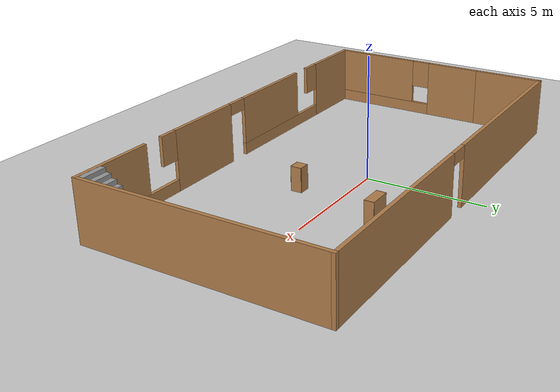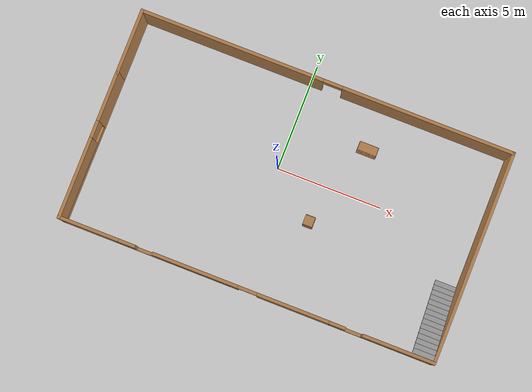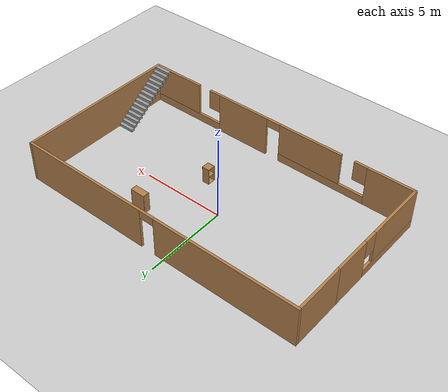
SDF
<sdf version="1.7">
 <world name="default">
  <light name="sun" type="directional">
   <pose>0 0 10 0 -0 0</pose>
   <diffuse>0.8 0.8 0.8 1</diffuse>
   <specular>0.2 0.2 0.2 1</specular>
   <attenuation>
    <range>1000</range>
    <constant>0.9</constant>
    <linear>0.01</linear>
    <quadratic>0.001</quadratic>
   </attenuation>
   <direction>-0.5 0.1 -0.9</direction>
   <spot><inner_angle>0</inner_angle><outer_angle>0</outer_angle><falloff>0</falloff></spot>
  </light>
  <model name="ground_plane">
   <static>1</static>
   <link name="link">
    <collision name="collision">
     <geometry><plane><normal>0 0 1</normal><size>100 100</size></plane></geometry>
     <surface>
      <contact><collide_bitmask>65535</collide_bitmask></contact>
      <friction><ode><mu>100</mu><mu2>50</mu2></ode></friction>
     </surface>
    </collision>
    <visual name="visual">
     <cast_shadows>0</cast_shadows>
     <geometry><plane><normal>0 0 1</normal><size>100 100</size></plane></geometry>
     <material>
      <script><uri>file://media/materials/scripts/gazebo.material</uri><name>Gazebo/Grey</name></script>
     </material>
    </visual>
   </link>
  </model>
  <gravity>0 0 -9.8</gravity>
  <magnetic_field>6e-06 2.3e-05 -4.2e-05</magnetic_field>
  <atmosphere type="adiabatic"/>
  <physics type="ode">
   <max_step_size>0.001</max_step_size>
   <real_time_factor>1</real_time_factor>
   <real_time_update_rate>1000</real_time_update_rate>
  </physics>
  <scene><ambient>0.4 0.4 0.4 1</ambient><background>0.7 0.7 0.7 1</background><shadows>1</shadows></scene>
  <audio><device>default</device></audio>
  <spherical_coordinates>
   <surface_model>EARTH_WGS84</surface_model>
   <latitude_deg>0</latitude_deg>
   <longitude_deg>0</longitude_deg>
   <elevation>0</elevation>
   <heading_deg>0</heading_deg>
  </spherical_coordinates>
  <model name="test">
   <pose>0.740401 -0.77646 0 0 -0 0</pose>
   <link name="Stairs_0">
    <visual name="Stairs_0_Visual_0">
     <pose>8.22968 -1.4617 0.083333 0 -0 0</pose>
     <geometry><box><size>1 0.233333 0.166667</size></box></geometry>
     <material>
      <script><uri>file://media/materials/scripts/gazebo.material</uri><name>Gazebo/Grey</name></script>
      <ambient>1 1 1 1</ambient>
     </material>
     <meta><layer>0</layer></meta>
    </visual>
    <collision name="Stairs_0_Collision_0">
     <geometry><box><size>1 0.233333 0.166667</size></box></geometry>
     <pose>8.22968 -1.4617 0.083333 0 -0 0</pose>
    </collision>
    <visual name="Stairs_0_Visual_1">
     <pose>8.22968 -1.69503 0.25 0 -0 0</pose>
     <geometry><box><size>1 0.233333 0.166667</size></box></geometry>
     <material>
      <script><uri>file://media/materials/scripts/gazebo.material</uri><name>Gazebo/Grey</name></script>
      <ambient>1 1 1 1</ambient>
     </material>
     <meta><layer>0</layer></meta>
    </visual>
    <collision name="Stairs_0_Collision_1">
     <geometry><box><size>1 0.233333 0.166667</size></box></geometry>
     <pose>8.22968 -1.69503 0.25 0 -0 0</pose>
    </collision>
    <visual name="Stairs_0_Visual_2">
     <pose>8.22968 -1.92836 0.416667 0 -0 0</pose>
     <geometry><box><size>1 0.233333 0.166667</size></box></geometry>
     <material>
      <script><uri>file://media/materials/scripts/gazebo.material</uri><name>Gazebo/Grey</name></script>
      <ambient>1 1 1 1</ambient>
     </material>
     <meta><layer>0</layer></meta>
    </visual>
    <collision name="Stairs_0_Collision_2">
     <geometry><box><size>1 0.233333 0.166667</size></box></geometry>
     <pose>8.22968 -1.92836 0.416667 0 -0 0</pose>
    </collision>
    <visual name="Stairs_0_Visual_3">
     <pose>8.22968 -2.1617 0.583333 0 -0 0</pose>
     <geometry><box><size>1 0.233333 0.166667</size></box></geometry>
     <material>
      <script><uri>file://media/materials/scripts/gazebo.material</uri><name>Gazebo/Grey</name></script>
      <ambient>1 1 1 1</ambient>
     </material>
     <meta><layer>0</layer></meta>
    </visual>
    <collision name="Stairs_0_Collision_3">
     <geometry><box><size>1 0.233333 0.166667</size></box></geometry>
     <pose>8.22968 -2.1617 0.583333 0 -0 0</pose>
    </collision>
    <visual name="Stairs_0_Visual_4">
     <pose>8.22968 -2.39503 0.75 0 -0 0</pose>
     <geometry><box><size>1 0.233333 0.166667</size></box></geometry>
     <material>
      <script><uri>file://media/materials/scripts/gazebo.material</uri><name>Gazebo/Grey</name></script>
      <ambient>1 1 1 1</ambient>
     </material>
     <meta><layer>0</layer></meta>
    </visual>
    <collision name="Stairs_0_Collision_4">
     <geometry><box><size>1 0.233333 0.166667</size></box></geometry>
     <pose>8.22968 -2.39503 0.75 0 -0 0</pose>
    </collision>
    <visual name="Stairs_0_Visual_5">
     <pose>8.22968 -2.62836 0.916667 0 -0 0</pose>
     <geometry><box><size>1 0.233333 0.166667</size></box></geometry>
     <material>
      <script><uri>file://media/materials/scripts/gazebo.material</uri><name>Gazebo/Grey</name></script>
      <ambient>1 1 1 1</ambient>
     </material>
     <meta><layer>0</layer></meta>
    </visual>
    <collision name="Stairs_0_Collision_5">
     <geometry><box><size>1 0.233333 0.166667</size></box></geometry>
     <pose>8.22968 -2.62836 0.916667 0 -0 0</pose>
    </collision>
    <visual name="Stairs_0_Visual_6">
     <pose>8.22968 -2.8617 1.08333 0 -0 0</pose>
     <geometry><box><size>1 0.233333 0.166667</size></box></geometry>
     <material>
      <script><uri>file://media/materials/scripts/gazebo.material</uri><name>Gazebo/Grey</name></script>
      <ambient>1 1 1 1</ambient>
     </material>
     <meta><layer>0</layer></meta>
    </visual>
    <collision name="Stairs_0_Collision_6">
     <geometry><box><size>1 0.233333 0.166667</size></box></geometry>
     <pose>8.22968 -2.8617 1.08333 0 -0 0</pose>
    </collision>
    <visual name="Stairs_0_Visual_7">
     <pose>8.22968 -3.09503 1.25 0 -0 0</pose>
     <geometry><box><size>1 0.233333 0.166667</size></box></geometry>
     <material>
      <script><uri>file://media/materials/scripts/gazebo.material</uri><name>Gazebo/Grey</name></script>
      <ambient>1 1 1 1</ambient>
     </material>
     <meta><layer>0</layer></meta>
    </visual>
    <collision name="Stairs_0_Collision_7">
     <geometry><box><size>1 0.233333 0.166667</size></box></geometry>
     <pose>8.22968 -3.09503 1.25 0 -0 0</pose>
    </collision>
    <visual name="Stairs_0_Visual_8">
     <pose>8.22968 -3.32836 1.41667 0 -0 0</pose>
     <geometry><box><size>1 0.233333 0.166667</size></box></geometry>
     <material>
      <script><uri>file://media/materials/scripts/gazebo.material</uri><name>Gazebo/Grey</name></script>
      <ambient>1 1 1 1</ambient>
     </material>
     <meta><layer>0</layer></meta>
    </visual>
    <collision name="Stairs_0_Collision_8">
     <geometry><box><size>1 0.233333 0.166667</size></box></geometry>
     <pose>8.22968 -3.32836 1.41667 0 -0 0</pose>
    </collision>
    <visual name="Stairs_0_Visual_9">
     <pose>8.22968 -3.5617 1.58333 0 -0 0</pose>
     <geometry><box><size>1 0.233333 0.166667</size></box></geometry>
     <material>
      <script><uri>file://media/materials/scripts/gazebo.material</uri><name>Gazebo/Grey</name></script>
      <ambient>1 1 1 1</ambient>
     </material>
     <meta><layer>0</layer></meta>
    </visual>
    <collision name="Stairs_0_Collision_9">
     <geometry><box><size>1 0.233333 0.166667</size></box></geometry>
     <pose>8.22968 -3.5617 1.58333 0 -0 0</pose>
    </collision>
    <visual name="Stairs_0_Visual_10">
     <pose>8.22968 -3.79503 1.75 0 -0 0</pose>
     <geometry><box><size>1 0.233333 0.166667</size></box></geometry>
     <material>
      <script><uri>file://media/materials/scripts/gazebo.material</uri><name>Gazebo/Grey</name></script>
      <ambient>1 1 1 1</ambient>
     </material>
     <meta><layer>0</layer></meta>
    </visual>
    <collision name="Stairs_0_Collision_10">
     <geometry><box><size>1 0.233333 0.166667</size></box></geometry>
     <pose>8.22968 -3.79503 1.75 0 -0 0</pose>
    </collision>
    <visual name="Stairs_0_Visual_11">
     <pose>8.22968 -4.02836 1.91667 0 -0 0</pose>
     <geometry><box><size>1 0.233333 0.166667</size></box></geometry>
     <material>
      <script><uri>file://media/materials/scripts/gazebo.material</uri><name>Gazebo/Grey</name></script>
      <ambient>1 1 1 1</ambient>
     </material>
     <meta><layer>0</layer></meta>
    </visual>
    <collision name="Stairs_0_Collision_11">
     <geometry><box><size>1 0.233333 0.166667</size></box></geometry>
     <pose>8.22968 -4.02836 1.91667 0 -0 0</pose>
    </collision>
    <visual name="Stairs_0_Visual_12">
     <pose>8.22968 -4.2617 2.08333 0 -0 0</pose>
     <geometry><box><size>1 0.233333 0.166667</size></box></geometry>
     <material>
      <script><uri>file://media/materials/scripts/gazebo.material</uri><name>Gazebo/Grey</name></script>
      <ambient>1 1 1 1</ambient>
     </material>
     <meta><layer>0</layer></meta>
    </visual>
    <collision name="Stairs_0_Collision_12">
     <geometry><box><size>1 0.233333 0.166667</size></box></geometry>
     <pose>8.22968 -4.2617 2.08333 0 -0 0</pose>
    </collision>
    <visual name="Stairs_0_Visual_13">
     <pose>8.22968 -4.49503 2.25 0 -0 0</pose>
     <geometry><box><size>1 0.233333 0.166667</size></box></geometry>
     <material>
      <script><uri>file://media/materials/scripts/gazebo.material</uri><name>Gazebo/Grey</name></script>
      <ambient>1 1 1 1</ambient>
     </material>
     <meta><layer>0</layer></meta>
    </visual>
    <collision name="Stairs_0_Collision_13">
     <geometry><box><size>1 0.233333 0.166667</size></box></geometry>
     <pose>8.22968 -4.49503 2.25 0 -0 0</pose>
    </collision>
    <visual name="Stairs_0_Visual_14">
     <pose>8.22968 -4.72836 2.41667 0 -0 0</pose>
     <geometry><box><size>1 0.233333 0.166667</size></box></geometry>
     <material>
      <script><uri>file://media/materials/scripts/gazebo.material</uri><name>Gazebo/Grey</name></script>
      <ambient>1 1 1 1</ambient>
     </material>
     <meta><layer>0</layer></meta>
    </visual>
    <collision name="Stairs_0_Collision_14">
     <geometry><box><size>1 0.233333 0.166667</size></box></geometry>
     <pose>8.22968 -4.72836 2.41667 0 -0 0</pose>
    </collision>
   </link>
   <link name="Wall_2">
    <pose>-8.8 -1.5 0 0 -0 -1.5708</pose>
    <visual name="Wall_2_Visual_0">
     <pose>-2.32289 0 1.25 0 -0 0</pose>
     <geometry><box><size>2.35421 0.15 2.5</size></box></geometry>
     <material>
      <script><uri>file://media/materials/scripts/gazebo.material</uri><name>Gazebo/Wood</name></script>
      <ambient>1 1 1 1</ambient>
     </material>
     <meta><layer>0</layer></meta>
    </visual>
    <collision name="Wall_2_Collision_0">
     <geometry><box><size>2.35421 0.15 2.5</size></box></geometry>
     <pose>-2.32289 0 1.25 0 -0 0</pose>
    </collision>
    <visual name="Wall_2_Visual_1">
     <pose>1.17711 0 0.25 0 -0 0</pose>
     <geometry><box><size>4.64579 0.15 0.5</size></box></geometry>
     <material>
      <script><uri>file://media/materials/scripts/gazebo.material</uri><name>Gazebo/Wood</name></script>
      <ambient>1 1 1 1</ambient>
     </material>
     <meta><layer>0</layer></meta>
    </visual>
    <collision name="Wall_2_Collision_1">
     <geometry><box><size>4.64579 0.15 0.5</size></box></geometry>
     <pose>1.17711 0 0.25 0 -0 0</pose>
    </collision>
    <visual name="Wall_2_Visual_2">
     <pose>1.57711 0 1.5 0 -0 0</pose>
     <geometry><box><size>3.84579 0.15 2</size></box></geometry>
     <material>
      <script><uri>file://media/materials/scripts/gazebo.material</uri><name>Gazebo/Wood</name></script>
      <ambient>1 1 1 1</ambient>
     </material>
     <meta><layer>0</layer></meta>
    </visual>
    <collision name="Wall_2_Collision_2">
     <geometry><box><size>3.84579 0.15 2</size></box></geometry>
     <pose>1.57711 0 1.5 0 -0 0</pose>
    </collision>
    <visual name="Wall_2_Visual_3">
     <pose>-0.745787 0 1.9 0 -0 0</pose>
     <geometry><box><size>0.8 0.15 1.2</size></box></geometry>
     <material>
      <script><uri>file://media/materials/scripts/gazebo.material</uri><name>Gazebo/Wood</name></script>
      <ambient>1 1 1 1</ambient>
     </material>
     <meta><layer>0</layer></meta>
    </visual>
    <collision name="Wall_2_Collision_3">
     <geometry><box><size>0.8 0.15 1.2</size></box></geometry>
     <pose>-0.745787 0 1.9 0 -0 0</pose>
    </collision>
   </link>
   <link name="Wall_3">
    <pose>-0 -4.925 0 0 -0 0</pose>
    <visual name="Wall_3_Visual_0">
     <pose>-7.43871 0 1.25 0 -0 0</pose>
     <geometry><box><size>2.87257 0.15 2.5</size></box></geometry>
     <material>
      <script><uri>file://media/materials/scripts/gazebo.material</uri><name>Gazebo/Wood</name></script>
      <ambient>1 1 1 1</ambient>
     </material>
     <meta><layer>0</layer></meta>
    </visual>
    <collision name="Wall_3_Collision_0">
     <geometry><box><size>2.87257 0.15 2.5</size></box></geometry>
     <pose>-7.43871 0 1.25 0 -0 0</pose>
    </collision>
    <visual name="Wall_3_Visual_1">
     <pose>2.20194 0 1.25 0 -0 0</pose>
     <geometry><box><size>3.38181 0.15 2.5</size></box></geometry>
     <material>
      <script><uri>file://media/materials/scripts/gazebo.material</uri><name>Gazebo/Wood</name></script>
      <ambient>1 1 1 1</ambient>
     </material>
     <meta><layer>0</layer></meta>
    </visual>
    <collision name="Wall_3_Collision_1">
     <geometry><box><size>3.38181 0.15 2.5</size></box></geometry>
     <pose>2.20194 0 1.25 0 -0 0</pose>
    </collision>
    <visual name="Wall_3_Visual_2">
     <pose>-3.19569 0 0.25 0 -0 0</pose>
     <geometry><box><size>5.61346 0.15 0.5</size></box></geometry>
     <material>
      <script><uri>file://media/materials/scripts/gazebo.material</uri><name>Gazebo/Wood</name></script>
      <ambient>1 1 1 1</ambient>
     </material>
     <meta><layer>0</layer></meta>
    </visual>
    <collision name="Wall_3_Collision_2">
     <geometry><box><size>5.61346 0.15 0.5</size></box></geometry>
     <pose>-3.19569 0 0.25 0 -0 0</pose>
    </collision>
    <visual name="Wall_3_Visual_3">
     <pose>6.38392 0 0.25 0 -0 0</pose>
     <geometry><box><size>4.98215 0.15 0.5</size></box></geometry>
     <material>
      <script><uri>file://media/materials/scripts/gazebo.material</uri><name>Gazebo/Wood</name></script>
      <ambient>1 1 1 1</ambient>
     </material>
     <meta><layer>0</layer></meta>
    </visual>
    <collision name="Wall_3_Collision_3">
     <geometry><box><size>4.98215 0.15 0.5</size></box></geometry>
     <pose>6.38392 0 0.25 0 -0 0</pose>
    </collision>
    <visual name="Wall_3_Visual_4">
     <pose>-2.39669 0 1.5 0 -0 0</pose>
     <geometry><box><size>4.01546 0.15 2</size></box></geometry>
     <material>
      <script><uri>file://media/materials/scripts/gazebo.material</uri><name>Gazebo/Wood</name></script>
      <ambient>1 1 1 1</ambient>
     </material>
     <meta><layer>0</layer></meta>
    </visual>
    <collision name="Wall_3_Collision_4">
     <geometry><box><size>4.01546 0.15 2</size></box></geometry>
     <pose>-2.39669 0 1.5 0 -0 0</pose>
    </collision>
    <visual name="Wall_3_Visual_5">
     <pose>-2.39669 0 1.5 0 -0 0</pose>
     <geometry><box><size>4.01546 0.15 2</size></box></geometry>
     <material>
      <script><uri>file://media/materials/scripts/gazebo.material</uri><name>Gazebo/Wood</name></script>
      <ambient>1 1 1 1</ambient>
     </material>
     <meta><layer>0</layer></meta>
    </visual>
    <collision name="Wall_3_Collision_5">
     <geometry><box><size>4.01546 0.15 2</size></box></geometry>
     <pose>-2.39669 0 1.5 0 -0 0</pose>
    </collision>
    <visual name="Wall_3_Visual_6">
     <pose>7.16963 0 1.5 0 -0 0</pose>
     <geometry><box><size>3.41074 0.15 2</size></box></geometry>
     <material>
      <script><uri>file://media/materials/scripts/gazebo.material</uri><name>Gazebo/Wood</name></script>
      <ambient>1 1 1 1</ambient>
     </material>
     <meta><layer>0</layer></meta>
    </visual>
    <collision name="Wall_3_Collision_6">
     <geometry><box><size>3.41074 0.15 2</size></box></geometry>
     <pose>7.16963 0 1.5 0 -0 0</pose>
    </collision>
    <visual name="Wall_3_Visual_7">
     <pose>-5.60342 0 1.9 0 -0 0</pose>
     <geometry><box><size>0.798006 0.15 1.2</size></box></geometry>
     <material>
      <script><uri>file://media/materials/scripts/gazebo.material</uri><name>Gazebo/Wood</name></script>
      <ambient>1 1 1 1</ambient>
     </material>
     <meta><layer>0</layer></meta>
    </visual>
    <collision name="Wall_3_Collision_7">
     <geometry><box><size>0.798006 0.15 1.2</size></box></geometry>
     <pose>-5.60342 0 1.9 0 -0 0</pose>
    </collision>
    <visual name="Wall_3_Visual_8">
     <pose>4.27855 0 1.9 0 -0 0</pose>
     <geometry><box><size>0.771406 0.15 1.2</size></box></geometry>
     <material>
      <script><uri>file://media/materials/scripts/gazebo.material</uri><name>Gazebo/Wood</name></script>
      <ambient>1 1 1 1</ambient>
     </material>
     <meta><layer>0</layer></meta>
    </visual>
    <collision name="Wall_3_Collision_8">
     <geometry><box><size>0.771406 0.15 1.2</size></box></geometry>
     <pose>4.27855 0 1.9 0 -0 0</pose>
    </collision>
    <visual name="Wall_3_Visual_9">
     <pose>0.061039 0 2.25 0 -0 0</pose>
     <geometry><box><size>0.9 0.15 0.5</size></box></geometry>
     <material>
      <script><uri>file://media/materials/scripts/gazebo.material</uri><name>Gazebo/Wood</name></script>
      <ambient>1 1 1 1</ambient>
     </material>
     <meta><layer>0</layer></meta>
    </visual>
    <collision name="Wall_3_Collision_9">
     <geometry><box><size>0.9 0.15 0.5</size></box></geometry>
     <pose>0.061039 0 2.25 0 -0 0</pose>
    </collision>
    <visual name="Wall_3_Visual_10">
     <pose>0.061039 0 2.25 0 -0 0</pose>
     <geometry><box><size>0.9 0.15 0.5</size></box></geometry>
     <material>
      <script><uri>file://media/materials/scripts/gazebo.material</uri><name>Gazebo/Wood</name></script>
      <ambient>1 1 1 1</ambient>
     </material>
     <meta><layer>0</layer></meta>
    </visual>
    <collision name="Wall_3_Collision_10">
     <geometry><box><size>0.9 0.15 0.5</size></box></geometry>
     <pose>0.061039 0 2.25 0 -0 0</pose>
    </collision>
   </link>
   <link name="Wall_4">
    <collision name="Wall_4_Collision">
     <geometry><box><size>10 0.15 2.5</size></box></geometry>
     <pose>0 0 1.25 0 -0 0</pose>
    </collision>
    <visual name="Wall_4_Visual">
     <pose>0 0 1.25 0 -0 0</pose>
     <geometry><box><size>10 0.15 2.5</size></box></geometry>
     <material>
      <script><uri>file://media/materials/scripts/gazebo.material</uri><name>Gazebo/Wood</name></script>
      <ambient>1 1 1 1</ambient>
     </material>
     <meta><layer>0</layer></meta>
    </visual>
    <pose>8.8 0 0 0 -0 1.5708</pose>
   </link>
   <link name="Wall_5">
    <pose>-0 4.925 0 0 -0 3.14159</pose>
    <visual name="Wall_5_Visual_0">
     <pose>-4.80061 0 1.25 0 -0 0</pose>
     <geometry><box><size>8.14878 0.15 2.5</size></box></geometry>
     <material>
      <script><uri>file://media/materials/scripts/gazebo.material</uri><name>Gazebo/Wood</name></script>
      <ambient>1 1 1 1</ambient>
     </material>
     <meta><layer>0</layer></meta>
    </visual>
    <collision name="Wall_5_Collision_0">
     <geometry><box><size>8.14878 0.15 2.5</size></box></geometry>
     <pose>-4.80061 0 1.25 0 -0 0</pose>
    </collision>
    <visual name="Wall_5_Visual_1">
     <pose>4.52439 0 1.25 0 -0 0</pose>
     <geometry><box><size>8.70122 0.15 2.5</size></box></geometry>
     <material>
      <script><uri>file://media/materials/scripts/gazebo.material</uri><name>Gazebo/Wood</name></script>
      <ambient>1 1 1 1</ambient>
     </material>
     <meta><layer>0</layer></meta>
    </visual>
    <collision name="Wall_5_Collision_1">
     <geometry><box><size>8.70122 0.15 2.5</size></box></geometry>
     <pose>4.52439 0 1.25 0 -0 0</pose>
    </collision>
    <visual name="Wall_5_Visual_2">
     <pose>-0.276219 0 2.25 0 -0 0</pose>
     <geometry><box><size>0.9 0.15 0.5</size></box></geometry>
     <material>
      <script><uri>file://media/materials/scripts/gazebo.material</uri><name>Gazebo/Wood</name></script>
      <ambient>1 1 1 1</ambient>
     </material>
     <meta><layer>0</layer></meta>
    </visual>
    <collision name="Wall_5_Collision_2">
     <geometry><box><size>0.9 0.15 0.5</size></box></geometry>
     <pose>-0.276219 0 2.25 0 -0 0</pose>
    </collision>
   </link>
   <link name="Wall_6">
    <collision name="Wall_6_Collision">
     <geometry><box><size>3.15 0.15 2.5</size></box></geometry>
     <pose>0 0 1.25 0 -0 0</pose>
    </collision>
    <visual name="Wall_6_Visual">
     <pose>0 0 1.25 0 -0 0</pose>
     <geometry><box><size>3.15 0.15 2.5</size></box></geometry>
     <material>
      <script><uri>file://media/materials/scripts/gazebo.material</uri><name>Gazebo/Wood</name></script>
      <ambient>1 1 1 1</ambient>
     </material>
     <meta><layer>0</layer></meta>
    </visual>
    <pose>-8.8 3.425 0 0 -0 -1.5708</pose>
   </link>
   <static>1</static>
  </model>
  <model name="bookshelf">
   <static>1</static>
   <link name="link">
    <inertial><mass>1</mass></inertial>
    <collision name="back">
     <pose>0 0.005 0.6 0 -0 0</pose>
     <geometry><box><size>0.9 0.01 1.2</size></box></geometry>
    </collision>
    <visual name="visual1">
     <pose>0 0.005 0.6 0 -0 0</pose>
     <geometry><box><size>0.9 0.01 1.2</size></box></geometry>
     <material>
      <script><uri>file://media/materials/scripts/gazebo.material</uri><name>Gazebo/Wood</name></script>
     </material>
    </visual>
    <collision name="left_side">
     <pose>0.45 -0.195 0.6 0 -0 0</pose>
     <geometry><box><size>0.02 0.4 1.2</size></box></geometry>
    </collision>
    <visual name="visual2">
     <pose>0.45 -0.195 0.6 0 -0 0</pose>
     <geometry><box><size>0.02 0.4 1.2</size></box></geometry>
     <material>
      <script><uri>file://media/materials/scripts/gazebo.material</uri><name>Gazebo/Wood</name></script>
     </material>
    </visual>
    <collision name="right_side">
     <pose>-0.45 -0.195 0.6 0 -0 0</pose>
     <geometry><box><size>0.02 0.4 1.2</size></box></geometry>
    </collision>
    <visual name="visual3">
     <pose>-0.45 -0.195 0.6 0 -0 0</pose>
     <geometry><box><size>0.02 0.4 1.2</size></box></geometry>
     <material>
      <script><uri>file://media/materials/scripts/gazebo.material</uri><name>Gazebo/Wood</name></script>
     </material>
    </visual>
    <collision name="bottom">
     <pose>0 -0.195 0.03 0 -0 0</pose>
     <geometry><box><size>0.88 0.4 0.06</size></box></geometry>
    </collision>
    <visual name="visual4">
     <pose>0 -0.195 0.03 0 -0 0</pose>
     <geometry><box><size>0.88 0.4 0.06</size></box></geometry>
     <material>
      <script><uri>file://media/materials/scripts/gazebo.material</uri><name>Gazebo/Wood</name></script>
     </material>
    </visual>
    <collision name="top">
     <pose>0 -0.195 1.19 0 -0 0</pose>
     <geometry><box><size>0.88 0.4 0.02</size></box></geometry>
    </collision>
    <visual name="visual5">
     <pose>0 -0.195 1.19 0 -0 0</pose>
     <geometry><box><size>0.88 0.4 0.02</size></box></geometry>
     <material>
      <script><uri>file://media/materials/scripts/gazebo.material</uri><name>Gazebo/Wood</name></script>
     </material>
    </visual>
    <collision name="low_shelf">
     <pose>0 -0.195 0.43 0 -0 0</pose>
     <geometry><box><size>0.88 0.4 0.02</size></box></geometry>
    </collision>
    <visual name="visual6">
     <pose>0 -0.195 0.43 0 -0 0</pose>
     <geometry><box><size>0.88 0.4 0.02</size></box></geometry>
     <material>
      <script><uri>file://media/materials/scripts/gazebo.material</uri><name>Gazebo/Wood</name></script>
     </material>
    </visual>
    <collision name="high_shelf">
     <pose>0 -0.195 0.8 0 -0 0</pose>
     <geometry><box><size>0.88 0.4 0.02</size></box></geometry>
    </collision>
    <visual name="visual7">
     <pose>0 -0.195 0.8 0 -0 0</pose>
     <geometry><box><size>0.88 0.4 0.02</size></box></geometry>
     <material>
      <script><uri>file://media/materials/scripts/gazebo.material</uri><name>Gazebo/Wood</name></script>
     </material>
    </visual>
   </link>
   <pose>3.49418 2.38449 0 0 -0 0</pose>
  </model>
  <model name="cabinet">
   <static>1</static>
   <link name="cabinet_bottom_plate">
    <inertial>
     <pose>0 0 -1 0 -0 0</pose>
     <inertia><ixx>2.05</ixx><ixy>0</ixy><ixz>0</ixz><iyy>2.05</iyy><iyz>0</iyz><izz>2.05</izz></inertia>
     <mass>25</mass>
    </inertial>
    <collision name="cabinet_bottom_plate_geom">
     <pose>0 0 0.01 0 -0 0</pose>
     <geometry><box><size>0.45 0.45 0.02</size></box></geometry>
    </collision>
    <visual name="cabinet_bottom_plate_geom_visual">
     <pose>0 0 0.01 0 -0 0</pose>
     <geometry><box><size>0.45 0.45 0.02</size></box></geometry>
     <material>
      <script><uri>file://media/materials/scripts/gazebo.material</uri><name>Gazebo/Wood</name></script>
     </material>
    </visual>
    <collision name="cabinet_bottom_plate_geom_cabinet_back_plate">
     <pose>0.235 0 0.51 0 -0 0</pose>
     <geometry><box><size>0.02 0.45 1.02</size></box></geometry>
    </collision>
    <visual name="cabinet_bottom_plate_geom_cabinet_back_plate_visual">
     <pose>0.235 0 0.51 0 -0 0</pose>
     <geometry><box><size>0.02 0.45 1.02</size></box></geometry>
     <material>
      <script><uri>file://media/materials/scripts/gazebo.material</uri><name>Gazebo/Wood</name></script>
     </material>
    </visual>
    <collision name="cabinet_bottom_plate_geom_cabinet_left_plate">
     <pose>0 0.235 0.51 0 -0 0</pose>
     <geometry><box><size>0.45 0.02 1.02</size></box></geometry>
    </collision>
    <visual name="cabinet_bottom_plate_geom_cabinet_left_plate_visual">
     <pose>0 0.235 0.51 0 -0 0</pose>
     <geometry><box><size>0.45 0.02 1.02</size></box></geometry>
     <material>
      <script><uri>file://media/materials/scripts/gazebo.material</uri><name>Gazebo/Wood</name></script>
     </material>
    </visual>
    <collision name="cabinet_bottom_plate_geom_cabinet_middle_plate">
     <pose>0 0 0.51 0 -0 0</pose>
     <geometry><box><size>0.45 0.45 0.02</size></box></geometry>
    </collision>
    <visual name="cabinet_bottom_plate_geom_cabinet_middle_plate_visual">
     <pose>0 0 0.51 0 -0 0</pose>
     <geometry><box><size>0.45 0.45 0.02</size></box></geometry>
     <material>
      <script><uri>file://media/materials/scripts/gazebo.material</uri><name>Gazebo/Wood</name></script>
     </material>
    </visual>
    <collision name="cabinet_bottom_plate_geom_cabinet_right_plate">
     <pose>0 -0.235 0.51 0 -0 0</pose>
     <geometry><box><size>0.45 0.02 1.02</size></box></geometry>
    </collision>
    <visual name="cabinet_bottom_plate_geom_cabinet_right_plate_visual">
     <pose>0 -0.235 0.51 0 -0 0</pose>
     <geometry><box><size>0.45 0.02 1.02</size></box></geometry>
     <material>
      <script><uri>file://media/materials/scripts/gazebo.material</uri><name>Gazebo/Wood</name></script>
     </material>
    </visual>
    <collision name="cabinet_bottom_plate_geom_cabinet_top_plate">
     <pose>0 0 1.01 0 -0 0</pose>
     <geometry><box><size>0.45 0.45 0.02</size></box></geometry>
    </collision>
    <visual name="cabinet_bottom_plate_geom_cabinet_top_plate_visual">
     <pose>0 0 1.01 0 -0 0</pose>
     <geometry><box><size>0.45 0.45 0.02</size></box></geometry>
     <material>
      <script><uri>file://media/materials/scripts/gazebo.material</uri><name>Gazebo/Wood</name></script>
     </material>
    </visual>
   </link>
   <pose>2.1918 -1.77689 0 0 -0 0</pose>
  </model>
 </world>
</sdf>
